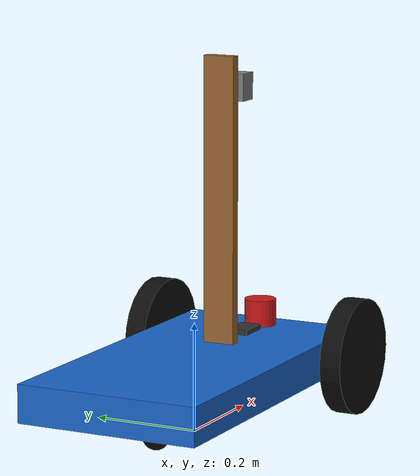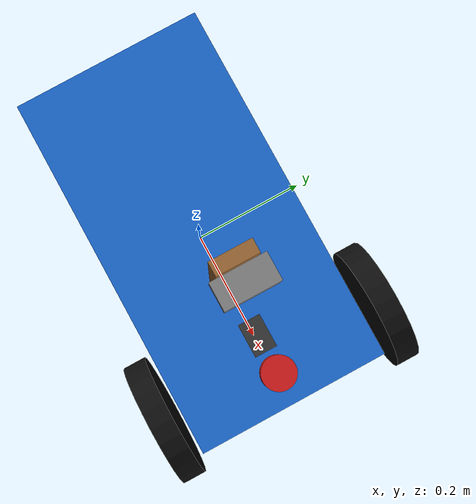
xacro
<?xml version="1.0"?>
<robot xmlns:xacro="http://www.ros.org/wiki/xacro" name="robot_car">

  <!-- 1. 物理尺寸常数 (实测精准数据) -->
  <xacro:property name="wheel_track"  value="0.405" />
  <xacro:property name="wheel_radius" value="0.108"  />
  <xacro:property name="wheel_length" value="0.04"   />
  <xacro:property name="base_length"  value="0.66"   />
  <xacro:property name="base_width"   value="0.342"  />
  <xacro:property name="base_height"  value="0.07"   />

  <!-- X 轴位置 (底盘中心为原点, 前方 +X, 两个差速轮那端是前方) -->
  <xacro:property name="laser_x"        value="0.272"  />
  <xacro:property name="wheel_x"        value="0.252"  />
  <xacro:property name="imu_x"          value="0.203"  />
  <xacro:property name="camera_board_x" value="0.105"  />
  <xacro:property name="caster_x"       value="-0.146" />

  <!-- 2. 颜色定义 -->
  <material name="dark_grey"><color rgba="0.2 0.2 0.2 1.0"/></material>
  <material name="blue"><color rgba="0.1 0.4 0.8 1.0"/></material>
  <material name="black"><color rgba="0.05 0.05 0.05 1.0"/></material>
  <material name="red"><color rgba="0.8 0.1 0.1 1.0"/></material>
  <material name="wood_brown"><color rgba="0.6 0.4 0.2 1.0"/></material>
  <material name="grey"><color rgba="0.5 0.5 0.5 1.0"/></material>

  <!-- 3. Base Footprint -->
  <link name="base_footprint"/>
  <joint name="base_footprint_joint" type="fixed">
    <parent link="base_footprint"/>
    <child link="base_link"/>
    <origin xyz="0 0 ${wheel_radius}" rpy="0 0 0"/>
  </joint>

  <!-- 4. Base Link 车体底盘 -->
  <link name="base_link">
    <visual>
      <origin xyz="0 0 0" rpy="0 0 0"/>
      <geometry>
        <box size="${base_length} ${base_width} ${base_height}"/>
      </geometry>
      <material name="blue"/>
    </visual>
    <collision>
      <origin xyz="0 0 0" rpy="0 0 0"/>
      <geometry>
        <box size="${base_length} ${base_width} ${base_height}"/>
      </geometry>
    </collision>
  </link>

  <!-- 5. 左差速驱动轮 -->
  <link name="left_wheel_link">
    <visual>
      <origin xyz="0 0 0" rpy="1.5707963 0 0"/>
      <geometry>
        <cylinder radius="${wheel_radius}" length="${wheel_length}"/>
      </geometry>
      <material name="black"/>
    </visual>
  </link>
  <joint name="left_wheel_joint" type="fixed">
    <parent link="base_link"/>
    <child link="left_wheel_link"/>
    <origin xyz="${wheel_x} ${wheel_track/2.0} 0" rpy="0 0 0"/>
  </joint>

  <!-- 6. 右差速驱动轮 -->
  <link name="right_wheel_link">
    <visual>
      <origin xyz="0 0 0" rpy="1.5707963 0 0"/>
      <geometry>
        <cylinder radius="${wheel_radius}" length="${wheel_length}"/>
      </geometry>
      <material name="black"/>
    </visual>
  </link>
  <joint name="right_wheel_joint" type="fixed">
    <parent link="base_link"/>
    <child link="right_wheel_link"/>
    <origin xyz="${wheel_x} ${-wheel_track/2.0} 0" rpy="0 0 0"/>
  </joint>

  <!-- 7. 后万向轮支架 -->
  <link name="caster_bracket_link">
    <visual>
      <origin xyz="0 0 0" rpy="0 0 0"/>
      <geometry>
        <cylinder radius="0.02" length="0.0215"/>
      </geometry>
      <material name="dark_grey"/>
    </visual>
  </link>
  <joint name="caster_bracket_joint" type="fixed">
    <parent link="base_link"/>
    <child link="caster_bracket_link"/>
    <origin xyz="${caster_x} 0 ${-base_height/2.0 - 0.01075}" rpy="0 0 0"/>
  </joint>

  <!-- 8. 后万向轮球 -->
  <link name="caster_wheel_link">
    <visual>
      <origin xyz="0 0 0" rpy="0 0 0"/>
      <geometry>
        <sphere radius="0.025"/>
      </geometry>
      <material name="black"/>
    </visual>
  </link>
  <joint name="caster_wheel_joint" type="fixed">
    <parent link="caster_bracket_link"/>
    <child link="caster_wheel_link"/>
    <origin xyz="0 0 ${-0.01075 - 0.025}" rpy="0 0 0"/>
  </joint>

  <!-- 9. 万集 719C 激光雷达 -->
  <link name="laser_link">
    <visual>
      <origin xyz="0 0 0" rpy="0 0 0"/>
      <geometry>
        <cylinder radius="0.03" length="0.05"/>
      </geometry>
      <material name="red"/>
    </visual>
  </link>
  <joint name="laser_joint" type="fixed">
    <parent link="base_link"/>
    <child link="laser_link"/>
    <origin xyz="${laser_x} 0.0 ${base_height/2.0 + 0.025}" rpy="0 0 0"/>
  </joint>

  <!-- 10. IMU 惯导 -->
  <link name="imu_link">
    <visual>
      <origin xyz="0 0 0" rpy="0 0 0"/>
      <geometry>
        <box size="0.06 0.04 0.01"/>
      </geometry>
      <material name="dark_grey"/>
    </visual>
  </link>
  <joint name="imu_joint" type="fixed">
    <parent link="base_link"/>
    <child link="imu_link"/>
    <origin xyz="${imu_x} 0.0 ${base_height/2.0 + 0.005}" rpy="0 0 0"/>
  </joint>

  <!-- 11. 相机木板立柱 -->
  <link name="camera_support_link">
    <visual>
      <origin xyz="0 0 0" rpy="0 0 0"/>
      <geometry>
        <box size="0.02 0.06 0.53"/>
      </geometry>
      <material name="wood_brown"/>
    </visual>
  </link>
  <joint name="camera_support_joint" type="fixed">
    <parent link="base_link"/>
    <child link="camera_support_link"/>
    <origin xyz="${camera_board_x} 0.0 ${base_height/2.0 + 0.265}" rpy="0 0 0"/>
  </joint>

  <!-- 12. Iris 3D 深度相机 -->
  <link name="camera_link">
    <visual>
      <origin xyz="0 0 0" rpy="0 0 0"/>
      <geometry>
        <box size="0.04 0.08 0.05"/>
      </geometry>
      <material name="grey"/>
    </visual>
  </link>
  <joint name="camera_joint" type="fixed">
    <parent link="camera_support_link"/>
    <child link="camera_link"/>
    <origin xyz="0.03 0.0 ${0.265 - 0.058}" rpy="0 0 0"/>
  </joint>

</robot>
